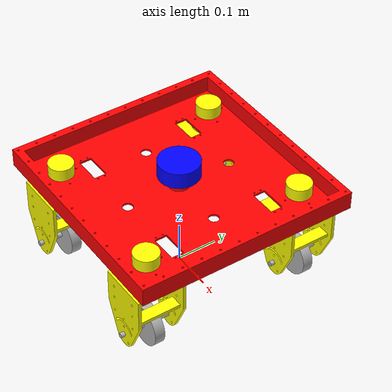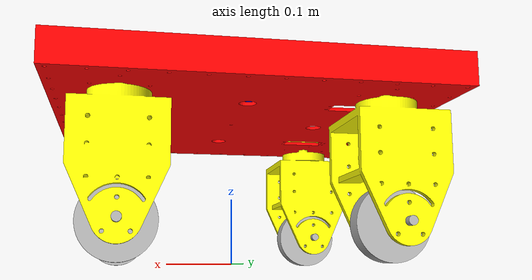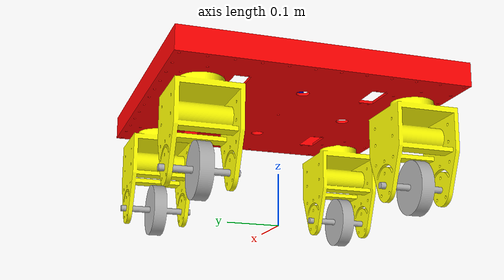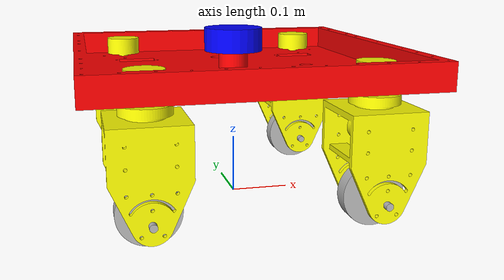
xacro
<?xml version="1.0" ?>
<robot name="amr" xmlns:xacro="http://www.ros.org/wiki/xacro">

<xacro:include filename="$(find amr_description)/urdf/materials.xacro" />
<xacro:include filename="$(find amr_description)/urdf/amr.trans" />

<material name="Red">
  <color rgba="1 0 0 1"/>
</material>

<material name="Green">
  <color rgba="0 1 0 1"/>
</material>

<material name="Blue">
  <color rgba="0 0 1 1"/>
</material>

<material name="Yellow">
  <color rgba="1 1 0 1"/>
</material>

<material name="Cyan">
  <color rgba="0 1 1 1"/>
</material>

<material name="Magenta">
  <color rgba="1 0 1 1"/>
</material>

<material name="White">
  <color rgba="1 1 1 1"/>
</material>

<link name="base_link">
  <inertial>
    <origin xyz="9.88370881442107e-15 1.585123111746775e-15 0.23509051148364088" rpy="0 0 0"/>
    <mass value="8.427520916605515"/>
    <inertia ixx="0.292265" iyy="0.291616" izz="0.580407" ixy="0.0" iyz="0.0" ixz="0.0"/>
  </inertial>
  <visual>

    <origin xyz="0 0 0" rpy="0 0 0"/>
    <geometry>
      <mesh filename="file:///home/yugmil/ros2_ws/src/amr_description/meshes/base_link.stl" scale="0.001 0.001 0.001"/>
    </geometry>
    <material name="Red"/>
  </visual>
  <collision>
    <origin xyz="0 0 0" rpy="0 0 0"/>
    <geometry>
      <mesh filename="file:///home/yugmil/ros2_ws/src/amr_description/meshes/base_link.stl" scale="0.001 0.001 0.001"/>
    </geometry>
  </collision>
</link>

<link name="assembly_1_1">
  <inertial>
    <origin xyz="3.2085445411667024e-14 2.220446049250313e-16 -0.06565912118430478" rpy="0 0 0"/>
    <mass value="0.7976447623370104"/>
    <inertia ixx="0.003267" iyy="0.002629" izz="0.001776" ixy="0.0" iyz="0.0" ixz="0.0"/>
  </inertial>
  <visual>
    <origin xyz="-0.175 0.2 -0.225" rpy="0 0 0"/>
    <geometry>
      <mesh filename="file:///home/yugmil/ros2_ws/src/amr_description/meshes/assembly_1_1.stl" scale="0.001 0.001 0.001"/>
    </geometry>
    <material name="Yellow"/>
  </visual>
  <collision>
    <origin xyz="-0.175 0.2 -0.225" rpy="0 0 0"/>
    <geometry>
      <mesh filename="file:///home/yugmil/ros2_ws/src/amr_description/meshes/assembly_1_1.stl" scale="0.001 0.001 0.001"/>
    </geometry>
  </collision>
</link>

<link name="assembly_2_1">
  <inertial>
    <origin xyz="-3.236300116782331e-14 2.7755575615628914e-17 -0.06565912118430459" rpy="0 0 0"/>
    <mass value="0.7976447623370104"/>
    <inertia ixx="0.003267" iyy="0.002629" izz="0.001776" ixy="-0.0" iyz="0.0" ixz="-0.0"/>
  </inertial>
  <visual>
    <origin xyz="-0.175 -0.2 -0.225" rpy="0 0 0"/>
    <geometry>
      <mesh filename="file:///home/yugmil/ros2_ws/src/amr_description/meshes/assembly_2_1.stl" scale="0.001 0.001 0.001"/>
    </geometry>
    <material name="Yellow"/>
  </visual>
  <collision>
    <origin xyz="-0.175 -0.2 -0.225" rpy="0 0 0"/>
    <geometry>
      <mesh filename="file:///home/yugmil/ros2_ws/src/amr_description/meshes/assembly_2_1.stl" scale="0.001 0.001 0.001"/>
    </geometry>
  </collision>
</link>

<link name="assembly_3_1">
  <inertial>
    <origin xyz="3.2307490016592055e-14 2.7755575615628914e-17 -0.06565912118430464" rpy="0 0 0"/>
    <mass value="0.7976447623370104"/>
    <inertia ixx="0.003267" iyy="0.002629" izz="0.001776" ixy="0.0" iyz="0.0" ixz="0.0"/>
  </inertial>
  <visual>
    <origin xyz="0.175 -0.2 -0.225" rpy="0 0 0"/>
    <geometry>
      <mesh filename="file:///home/yugmil/ros2_ws/src/amr_description/meshes/assembly_3_1.stl" scale="0.001 0.001 0.001"/>
    </geometry>
    <material name="Yellow"/>
  </visual>
  <collision>
    <origin xyz="0.175 -0.2 -0.225" rpy="0 0 0"/>
    <geometry>
      <mesh filename="file:/home/yugmil/ros2_ws/src/amr_description/meshes/assembly_3_1.stl" scale="0.001 0.001 0.001"/>
    </geometry>
  </collision>
</link>

<link name="assembly_4_1">
  <inertial>
    <origin xyz="-3.2279734440976426e-14 1.942890293094024e-16 -0.0656591211843047" rpy="0 0 0"/>
    <mass value="0.7976447623370104"/>
    <inertia ixx="0.003267" iyy="0.002629" izz="0.001776" ixy="-0.0" iyz="0.0" ixz="-0.0"/>
  </inertial>
  <visual>
    <origin xyz="0.175 0.2 -0.225" rpy="0 0 0"/>
    <geometry>
      <mesh filename="file:///home/yugmil/ros2_ws/src/amr_description/meshes/assembly_4_1.stl" scale="0.001 0.001 0.001"/>
    </geometry>
    <material name="Yellow"/>
  </visual>
  <collision>
    <origin xyz="0.175 0.2 -0.225" rpy="0 0 0"/>
    <geometry>
      <mesh filename="file:///home/yugmil/ros2_ws/src/amr_description/meshes/assembly_4_1.stl" scale="0.001 0.001 0.001"/>
    </geometry>
  </collision>
</link>

<link name="wheel_1_1">
  <inertial>
    <origin xyz="0.0 0.06 1.3877787807814457e-17" rpy="0 0 0"/>
    <mass value="0.19470083302475816"/>
    <inertia ixx="0.000148" iyy="0.000228" izz="0.000148" ixy="0.0" iyz="-0.0" ixz="0.0"/>
  </inertial>
  <visual>
    <origin xyz="-0.175 0.26 -0.05" rpy="0 0 0"/>
    <geometry>
      <mesh filename="file:///home/yugmil/ros2_ws/src/amr_description/meshes/wheel_1_1.stl" scale="0.001 0.001 0.001"/>
    </geometry>
    <material name="silver"/>
  </visual>
  <collision>
    <origin xyz="-0.175 0.26 -0.05" rpy="0 0 0"/>
    <geometry>
      <mesh filename="file:///home/yugmil/ros2_ws/src/amr_description/meshes/wheel_1_1.stl" scale="0.001 0.001 0.001"/>
    </geometry>
  </collision>
</link>

<link name="wheel_2_1">
  <inertial>
    <origin xyz="0.0 -0.05999999999999994 1.3877787807814457e-17" rpy="0 0 0"/>
    <mass value="0.19470083302475816"/>
    <inertia ixx="0.000148" iyy="0.000228" izz="0.000148" ixy="0.0" iyz="0.0" ixz="0.0"/>
  </inertial>
  <visual>
    <origin xyz="-0.175 -0.26 -0.05" rpy="0 0 0"/>
    <geometry>
      <mesh filename="file:///home/yugmil/ros2_ws/src/amr_description/meshes/wheel_2_1.stl" scale="0.001 0.001 0.001"/>
    </geometry>
    <material name="silver"/>
  </visual>
  <collision>
    <origin xyz="-0.175 -0.26 -0.05" rpy="0 0 0"/>
    <geometry>
      <mesh filename="file:///home/yugmil/ros2_ws/src/amr_description/meshes/wheel_2_1.stl" scale="0.001 0.001 0.001"/>
    </geometry>
  </collision>
</link>

<link name="wheel_3_1">
  <inertial>
    <origin xyz="0.0 -0.05999999999999997 6.938893903907228e-18" rpy="0 0 0"/>
    <mass value="0.19470083302475819"/>
    <inertia ixx="0.000148" iyy="0.000228" izz="0.000148" ixy="-0.0" iyz="0.0" ixz="0.0"/>
  </inertial>
  <visual>
    <origin xyz="0.175 -0.26 -0.05" rpy="0 0 0"/>
    <geometry>
      <mesh filename="file:///home/yugmil/ros2_ws/src/amr_description/meshes/wheel_3_1.stl" scale="0.001 0.001 0.001"/>
    </geometry>
    <material name="silver"/>
  </visual>
  <collision>
    <origin xyz="0.175 -0.26 -0.05" rpy="0 0 0"/>
    <geometry>
      <mesh filename="file:///home/yugmil/ros2_ws/src/amr_description/meshes/wheel_3_1.stl" scale="0.001 0.001 0.001"/>
    </geometry>
  </collision>
</link>

<link name="wheel_4_1">
  <inertial>
    <origin xyz="0.0 0.05999999999999994 6.938893903907228e-18" rpy="0 0 0"/>
    <mass value="0.19470083302475819"/>
    <inertia ixx="0.000148" iyy="0.000228" izz="0.000148" ixy="0.0" iyz="-0.0" ixz="-0.0"/>
  </inertial>
  <visual>
    <origin xyz="0.175 0.26 -0.05" rpy="0 0 0"/>
    <geometry>
      <mesh filename="file:///home/yugmil/ros2_ws/src/amr_description/meshes/wheel_4_1.stl" scale="0.001 0.001 0.001"/>
    </geometry>
    <material name="silver"/>
  </visual>
  <collision>
    <origin xyz="0.175 0.26 -0.05" rpy="0 0 0"/>
    <geometry>
      <mesh filename="file:///home/yugmil/ros2_ws/src/amr_description/meshes/wheel_4_1.stl" scale="0.001 0.001 0.001"/>
    </geometry>
  </collision>
</link>

<joint name="a1_bl" type="continuous">
  <origin xyz="0.175 -0.2 0.225" rpy="0 0 0"/>
  <parent link="base_link"/>
  <child link="assembly_1_1"/>
  <axis xyz="0.0 0.0 -1.0"/>
</joint>

<joint name="a2_bl" type="continuous">
  <origin xyz="0.175 0.2 0.225" rpy="0 0 0"/>
  <parent link="base_link"/>
  <child link="assembly_2_1"/>
  <axis xyz="0.0 0.0 -1.0"/>
</joint>

<joint name="a3_bl" type="continuous">
  <origin xyz="-0.175 0.2 0.225" rpy="0 0 0"/>
  <parent link="base_link"/>
  <child link="assembly_3_1"/>
  <axis xyz="0.0 0.0 -1.0"/>
</joint>

<joint name="a4_bl" type="continuous">
  <origin xyz="-0.175 -0.2 0.225" rpy="0 0 0"/>
  <parent link="base_link"/>
  <child link="assembly_4_1"/>
  <axis xyz="0.0 0.0 -1.0"/>
</joint>

<joint name="w1_a1" type="continuous">
  <origin xyz="0.0 -0.06 -0.175" rpy="0 0 0"/>
  <parent link="assembly_1_1"/>
  <child link="wheel_1_1"/>
  <axis xyz="0.0 1.0 0.0"/>
</joint>

<joint name="w2_a2" type="continuous">
  <origin xyz="0.0 0.06 -0.175" rpy="0 0 0"/>
  <parent link="assembly_2_1"/>
  <child link="wheel_2_1"/>
  <axis xyz="0.0 1.0 0.0"/>
</joint>

<joint name="w3_a3" type="continuous">
  <origin xyz="0.0 0.06 -0.175" rpy="0 0 0"/>
  <parent link="assembly_3_1"/>
  <child link="wheel_3_1"/>
  <axis xyz="0.0 1.0 0.0"/>
</joint>

<joint name="w4_a4" type="continuous">
  <origin xyz="0.0 -0.06 -0.175" rpy="0 0 0"/>
  <parent link="assembly_4_1"/>
  <child link="wheel_4_1"/>
  <axis xyz="0.0 1.0 0.0"/>
</joint>

<link name="laser_frame">
  <inertial>
    <origin xyz="0.0 -5.654319433712919e-18 0.009999999999999953" rpy="0 0 0"/>
    <mass value ="0.1"/>
    <inertia ixx="4.6e-05" iyy="4.6e-05" izz="8.5e-05" ixy="0.0" iyz="0.0" ixz="-0.0"/>
  </inertial>
  <visual>
    <geometry>
      <cylinder length="0.04" radius="0.05"/>
    </geometry>
    <material name="Blue"/>
  </visual>
  <collision>
    <geometry>
      <cylinder length="0.04" radius="0.05"/>
    </geometry>
  </collision>
</link>

<link name="imu_sensor">
  <inertial>
    <origin xyz="0.0 -5.654319433712919e-18 0.0509999999999999953" rpy="0 0 0"/>
    <mass value ="0.1"/>
    <inertia ixx="4.6e-05" iyy="4.6e-05" izz="8.5e-05" ixy="0.0" iyz="0.0" ixz="-0.0"/>
  </inertial>
  <visual>
    <geometry>
      <cylinder length="0.04" radius="0.05"/>
    </geometry>
    <material name="Red"/>
  </visual>
  <collision>
    <geometry>
      <cylinder length="0.04" radius="0.05"/>
    </geometry>
  </collision>
</link>

<joint name="laser_joint" type="fixed">
    <origin xyz="0.0 0.0 0.275" rpy="0 0 0"/>
    <parent link="base_link"/>
    <child link="laser_frame"/>
</joint>

<joint name="imu_joint" type="fixed">
    <origin xyz="0.0 0.0 0.275" rpy="0 0 0"/>
    <parent link="base_link"/>
    <child link="imu_sensor"/>
</joint>

<gazebo reference="laser_frame">
  <sensor type="gpu_lidar" name="lidar_1">
    <update_rate>10.0</update_rate> <!-- Frequency of data publication -->
    <always_on>true</always_on>
    <visualize>true</visualize>
    <topic>/scan</topic> <!-- ROS topic for lidar data -->
    <ray>
      <scan>
        <horizontal>
          <samples>180</samples> <!-- Number of laser beams (e.g., 0.33° resolution for 360°) -->
          <resolution>1.0</resolution> <!-- Angular resolution -->
          <min_angle>0</min_angle> <!-- -180 degrees in radians -->
          <max_angle>6.283</max_angle> <!-- 180 degrees in radians -->
        </horizontal>
        <vertical>
          <samples>1</samples> <!-- No vertical sweep for 2D lidar -->
          <resolution>1.0</resolution>
          <min_angle>0</min_angle>
          <max_angle>0</max_angle>
        </vertical>
      </scan>
      <range>
        <min>0.1</min> <!-- Minimum range in meters -->
        <max>10.0</max> <!-- Maximum range in meters -->
      </range>
      <noise>
        <type>gaussian</type>
        <mean>0.0</mean>
        <stddev>0.01</stddev> <!-- Simulated noise -->
      </noise>
    </ray>
    <plugin filename="ignition-gazebo-sensors-system" name="ignition::gazebo::systems::Sensors">
    <render_engine>ogre2</render_engine>
    </plugin>
  </sensor>
</gazebo>

<ros2_control name="SwerveControl" type="system">
    <hardware>
        <plugin>ign_ros2_control/IgnitionSystem</plugin>
    </hardware>
    <joint name="a1_bl">
        <command_interface name="position">
            <param name="min">-100</param>
            <param name="max">100</param>
        </command_interface>

        <state_interface name="position">
        <param name="initial_value">0.0</param>
        </state_interface>
    </joint>
    <joint name="a2_bl">
        <command_interface name="position">
            <param name="min">-100</param>
            <param name="max">100</param>
        </command_interface>

        <state_interface name="position">
        <param name="initial_value">0.0</param>
        </state_interface>
    </joint>
    <joint name="a3_bl">
        <command_interface name="position">
            <param name="min">-100</param>
            <param name="max">100</param>
        </command_interface>

        <state_interface name="position">
        <param name="initial_value">0.0</param>
        </state_interface>
    </joint>
    <joint name="a4_bl">
        <command_interface name="position">
            <param name="min">-100</param>
            <param name="max">100</param>
        </command_interface>

        <state_interface name="position">
        <param name="initial_value">0.0</param>
        </state_interface>
    </joint>

    <joint name="w1_a1">
        <command_interface name="velocity">
            <param name="min">-2.5</param>
            <param name="max">2.5</param>
        </command_interface>
        <state_interface name="velocity">
        <param name="initial_value">0.0</param>
        </state_interface>

    </joint>
    <joint name="w2_a2">
        <command_interface name="velocity">
            <param name="min">-2.5</param>
            <param name="max">2.5</param>
        </command_interface>
        <state_interface name="velocity">
        <param name="initial_value">0.0</param>
        </state_interface>

    </joint>
    <joint name="w3_a3">
        <command_interface name="velocity">
            <param name="min">-2.5</param>
            <param name="max">2.5</param>
        </command_interface>
        <state_interface name="velocity">
        <param name="initial_value">0.0</param>
        </state_interface>

    </joint>
    <joint name="w4_a4">
        <command_interface name="velocity">
            <param name="min">-2.5</param>
            <param name="max">2.5</param>
        </command_interface>
        <state_interface name="velocity">
        <param name="initial_value">0.0</param>
        </state_interface>

    </joint>
</ros2_control>

<gazebo>
    <plugin filename="ign_ros2_control-system" name="ign_ros2_control::IgnitionROS2ControlPlugin">
        <parameters>/home/yugmil/ros2_ws/src/amr_description/config/controller.yaml</parameters>
    </plugin>

</gazebo>

<gazebo reference="imu_sensor">
  <gravity>true</gravity>
  <sensor name="imu_sensor" type="imu">
      <always_on>true</always_on>
      <update_rate>25</update_rate>
      <visualize>true</visualize>
      <topic>/imu</topic>
      <plugin filename="libignition-gazebo-imu-system.so" name="ignition::gazebo::systems::Imu">
      </plugin>
      <pose>0 0 0 0 0 0</pose>
  </sensor>
</gazebo>

<gazebo>
  <plugin
        filename="libignition-gazebo-pose-publisher-system.so"
        name="ignition::gazebo::systems::PosePublisher">
    <publish_link_pose>true</publish_link_pose>
    <publish_sensor_pose>true</publish_sensor_pose>
    <publish_collision_pose>false</publish_collision_pose>
    <publish_visual_pose>false</publish_visual_pose>
    <publish_model_pose>true</publish_model_pose>
    <publish_nested_model_pose>true</publish_nested_model_pose>
    <use_pose_vector_msg>true</use_pose_vector_msg>
    <static_publisher>true</static_publisher>
    <static_update_frequency>-1</static_update_frequency>
  </plugin>
</gazebo>
</robot>

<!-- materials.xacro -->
<robot name="amr" xmlns:xacro="http://www.ros.org/wiki/xacro" >

<material name="silver">
  <color rgba="0.700 0.700 0.700 1.000"/>
</material>
<material name="berry" >
  <color rgba="0.6 0.058823529411764705 0.29411764705882354 1.0" />
</material>

<material name="red" >
  <color rgba="1 0.0 0.0 1.0" />
</material>
</robot>
